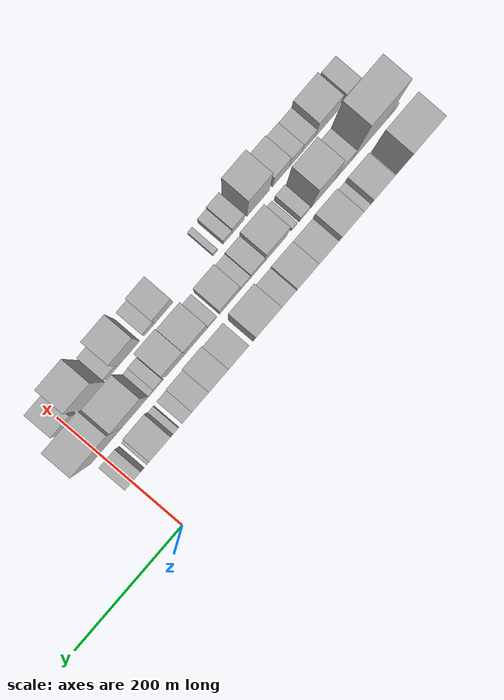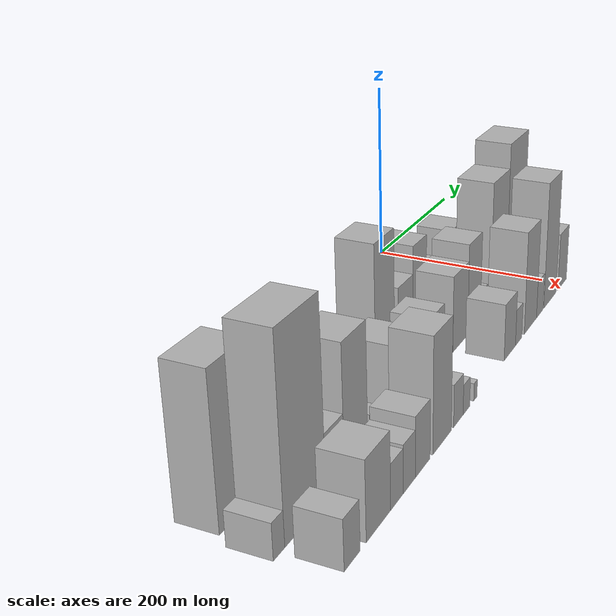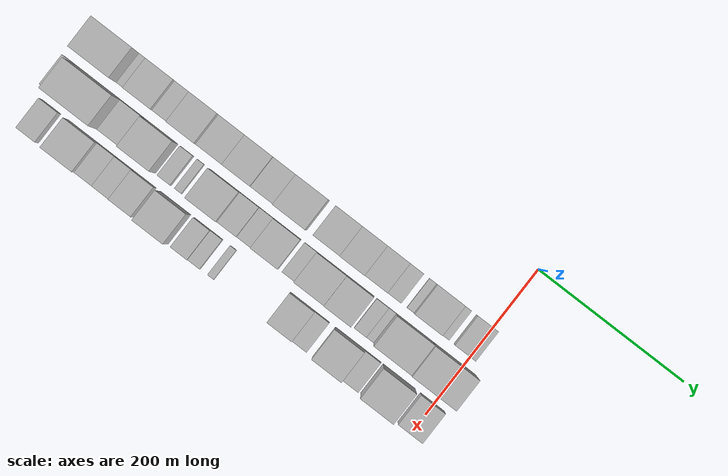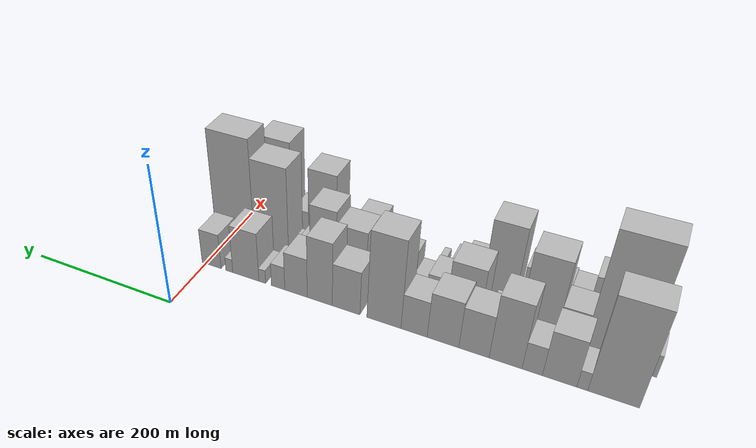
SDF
<sdf version="1.6">
 <world name="default">
  <model name="building_1">
   <static>1</static>
   <pose>100.0000 -510.8709 0 0.000000 0.000000 0.000000</pose>
   <link name="link">
    <pose>0 0 70.50 0 0 0</pose>
    <collision name="collision"><geometry><box><size>40.0000 54.2581 141.0000</size></box></geometry></collision>
    <visual name="visual">
     <cast_shadows>0</cast_shadows>
     <geometry><box><size>40.0000 54.2581 141.0000</size></box></geometry>
     <material>
      <script>
       <uri>model://HANNAS_wall/materials/scripts</uri>
       <uri>model://HANNAS_wall/materials/textures</uri>
       <name>vrc/HANNAS_wall</name>
      </script>
     </material>
    </visual>
   </link>
  </model>
  <model name="building_2">
   <static>1</static>
   <pose>100.0000 -477.8455 0 0.000000 0.000000 0.000000</pose>
   <link name="link">
    <pose>0 0 13.50 0 0 0</pose>
    <collision name="collision"><geometry><box><size>40.0000 11.7927 27.0000</size></box></geometry></collision>
    <visual name="visual">
     <cast_shadows>0</cast_shadows>
     <geometry><box><size>40.0000 11.7927 27.0000</size></box></geometry>
     <material>
      <script>
       <uri>model://HANNAS_wall/materials/scripts</uri>
       <uri>model://HANNAS_wall/materials/textures</uri>
       <name>vrc/HANNAS_wall</name>
      </script>
     </material>
    </visual>
   </link>
  </model>
  <model name="building_3">
   <static>1</static>
   <pose>100.0000 -453.1120 0 0.000000 0.000000 0.000000</pose>
   <link name="link">
    <pose>0 0 34.50 0 0 0</pose>
    <collision name="collision"><geometry><box><size>40.0000 37.6744 69.0000</size></box></geometry></collision>
    <visual name="visual">
     <cast_shadows>0</cast_shadows>
     <geometry><box><size>40.0000 37.6744 69.0000</size></box></geometry>
     <material>
      <script>
       <uri>model://HANNAS_wall/materials/scripts</uri>
       <uri>model://HANNAS_wall/materials/textures</uri>
       <name>vrc/HANNAS_wall</name>
      </script>
     </material>
    </visual>
   </link>
  </model>
  <model name="building_4">
   <static>1</static>
   <pose>100.0000 -422.9121 0 0.000000 0.000000 0.000000</pose>
   <link name="link">
    <pose>0 0 21.00 0 0 0</pose>
    <collision name="collision"><geometry><box><size>40.0000 22.7253 42.0000</size></box></geometry></collision>
    <visual name="visual">
     <cast_shadows>0</cast_shadows>
     <geometry><box><size>40.0000 22.7253 42.0000</size></box></geometry>
     <material>
      <script>
       <uri>model://HANNAS_wall/materials/scripts</uri>
       <uri>model://HANNAS_wall/materials/textures</uri>
       <name>vrc/HANNAS_wall</name>
      </script>
     </material>
    </visual>
   </link>
  </model>
  <model name="building_5">
   <static>1</static>
   <pose>100.0000 -392.6772 0 0.000000 0.000000 0.000000</pose>
   <link name="link">
    <pose>0 0 48.00 0 0 0</pose>
    <collision name="collision"><geometry><box><size>40.0000 37.7445 96.0000</size></box></geometry></collision>
    <visual name="visual">
     <cast_shadows>0</cast_shadows>
     <geometry><box><size>40.0000 37.7445 96.0000</size></box></geometry>
     <material>
      <script>
       <uri>model://HANNAS_wall/materials/scripts</uri>
       <uri>model://HANNAS_wall/materials/textures</uri>
       <name>vrc/HANNAS_wall</name>
      </script>
     </material>
    </visual>
   </link>
  </model>
  <model name="building_6">
   <static>1</static>
   <pose>100.0000 -356.0114 0 0.000000 0.000000 0.000000</pose>
   <link name="link">
    <pose>0 0 31.50 0 0 0</pose>
    <collision name="collision"><geometry><box><size>40.0000 35.5872 63.0000</size></box></geometry></collision>
    <visual name="visual">
     <cast_shadows>0</cast_shadows>
     <geometry><box><size>40.0000 35.5872 63.0000</size></box></geometry>
     <material>
      <script>
       <uri>model://HANNAS_wall/materials/scripts</uri>
       <uri>model://HANNAS_wall/materials/textures</uri>
       <name>vrc/HANNAS_wall</name>
      </script>
     </material>
    </visual>
   </link>
  </model>
  <model name="building_7">
   <static>1</static>
   <pose>100.0000 -319.1402 0 0.000000 0.000000 0.000000</pose>
   <link name="link">
    <pose>0 0 34.50 0 0 0</pose>
    <collision name="collision"><geometry><box><size>40.0000 38.1551 69.0000</size></box></geometry></collision>
    <visual name="visual">
     <cast_shadows>0</cast_shadows>
     <geometry><box><size>40.0000 38.1551 69.0000</size></box></geometry>
     <material>
      <script>
       <uri>model://HANNAS_wall/materials/scripts</uri>
       <uri>model://HANNAS_wall/materials/textures</uri>
       <name>vrc/HANNAS_wall</name>
      </script>
     </material>
    </visual>
   </link>
  </model>
  <model name="building_8">
   <static>1</static>
   <pose>100.0000 -283.8798 0 0.000000 0.000000 0.000000</pose>
   <link name="link">
    <pose>0 0 27.00 0 0 0</pose>
    <collision name="collision"><geometry><box><size>40.0000 32.3658 54.0000</size></box></geometry></collision>
    <visual name="visual">
     <cast_shadows>0</cast_shadows>
     <geometry><box><size>40.0000 32.3658 54.0000</size></box></geometry>
     <material>
      <script>
       <uri>model://HANNAS_wall/materials/scripts</uri>
       <uri>model://HANNAS_wall/materials/textures</uri>
       <name>vrc/HANNAS_wall</name>
      </script>
     </material>
    </visual>
   </link>
  </model>
  <model name="building_9">
   <static>1</static>
   <pose>100.0000 -245.9838 0 0.000000 0.000000 0.000000</pose>
   <link name="link">
    <pose>0 0 66.00 0 0 0</pose>
    <collision name="collision"><geometry><box><size>40.0000 43.4262 132.0000</size></box></geometry></collision>
    <visual name="visual">
     <cast_shadows>0</cast_shadows>
     <geometry><box><size>40.0000 43.4262 132.0000</size></box></geometry>
     <material>
      <script>
       <uri>model://HANNAS_wall/materials/scripts</uri>
       <uri>model://HANNAS_wall/materials/textures</uri>
       <name>vrc/HANNAS_wall</name>
      </script>
     </material>
    </visual>
   </link>
  </model>
  <model name="building_10">
   <static>1</static>
   <pose>100.0000 -197.0725 0 0.000000 0.000000 0.000000</pose>
   <link name="link">
    <pose>0 0 33.00 0 0 0</pose>
    <collision name="collision"><geometry><box><size>40.0000 36.3964 66.0000</size></box></geometry></collision>
    <visual name="visual">
     <cast_shadows>0</cast_shadows>
     <geometry><box><size>40.0000 36.3964 66.0000</size></box></geometry>
     <material>
      <script>
       <uri>model://HANNAS_wall/materials/scripts</uri>
       <uri>model://HANNAS_wall/materials/textures</uri>
       <name>vrc/HANNAS_wall</name>
      </script>
     </material>
    </visual>
   </link>
  </model>
  <model name="building_11">
   <static>1</static>
   <pose>100.0000 -162.0324 0 0.000000 0.000000 0.000000</pose>
   <link name="link">
    <pose>0 0 48.00 0 0 0</pose>
    <collision name="collision"><geometry><box><size>40.0000 33.6838 96.0000</size></box></geometry></collision>
    <visual name="visual">
     <cast_shadows>0</cast_shadows>
     <geometry><box><size>40.0000 33.6838 96.0000</size></box></geometry>
     <material>
      <script>
       <uri>model://HANNAS_wall/materials/scripts</uri>
       <uri>model://HANNAS_wall/materials/textures</uri>
       <name>vrc/HANNAS_wall</name>
      </script>
     </material>
    </visual>
   </link>
  </model>
  <model name="building_12">
   <static>1</static>
   <pose>100.0000 -129.7146 0 0.000000 0.000000 0.000000</pose>
   <link name="link">
    <pose>0 0 30.00 0 0 0</pose>
    <collision name="collision"><geometry><box><size>40.0000 30.9517 60.0000</size></box></geometry></collision>
    <visual name="visual">
     <cast_shadows>0</cast_shadows>
     <geometry><box><size>40.0000 30.9517 60.0000</size></box></geometry>
     <material>
      <script>
       <uri>model://HANNAS_wall/materials/scripts</uri>
       <uri>model://HANNAS_wall/materials/textures</uri>
       <name>vrc/HANNAS_wall</name>
      </script>
     </material>
    </visual>
   </link>
  </model>
  <model name="building_13">
   <static>1</static>
   <pose>100.0000 -104.8433 0 0.000000 0.000000 0.000000</pose>
   <link name="link">
    <pose>0 0 18.00 0 0 0</pose>
    <collision name="collision"><geometry><box><size>40.0000 18.7910 36.0000</size></box></geometry></collision>
    <visual name="visual">
     <cast_shadows>0</cast_shadows>
     <geometry><box><size>40.0000 18.7910 36.0000</size></box></geometry>
     <material>
      <script>
       <uri>model://HANNAS_wall/materials/scripts</uri>
       <uri>model://HANNAS_wall/materials/textures</uri>
       <name>vrc/HANNAS_wall</name>
      </script>
     </material>
    </visual>
   </link>
  </model>
  <model name="building_14">
   <static>1</static>
   <pose>100.0000 -82.6187 0 0.000000 0.000000 0.000000</pose>
   <link name="link">
    <pose>0 0 10.50 0 0 0</pose>
    <collision name="collision"><geometry><box><size>40.0000 9.6580 21.0000</size></box></geometry></collision>
    <visual name="visual">
     <cast_shadows>0</cast_shadows>
     <geometry><box><size>40.0000 9.6580 21.0000</size></box></geometry>
     <material>
      <script>
       <uri>model://HANNAS_wall/materials/scripts</uri>
       <uri>model://HANNAS_wall/materials/textures</uri>
       <name>vrc/HANNAS_wall</name>
      </script>
     </material>
    </visual>
   </link>
  </model>
  <model name="building_15">
   <static>1</static>
   <pose>100.0000 -58.9657 0 0.000000 0.000000 0.000000</pose>
   <link name="link">
    <pose>0 0 37.50 0 0 0</pose>
    <collision name="collision"><geometry><box><size>40.0000 37.6481 75.0000</size></box></geometry></collision>
    <visual name="visual">
     <cast_shadows>0</cast_shadows>
     <geometry><box><size>40.0000 37.6481 75.0000</size></box></geometry>
     <material>
      <script>
       <uri>model://HANNAS_wall/materials/scripts</uri>
       <uri>model://HANNAS_wall/materials/textures</uri>
       <name>vrc/HANNAS_wall</name>
      </script>
     </material>
    </visual>
   </link>
  </model>
  <model name="building_16">
   <static>1</static>
   <pose>100.0000 -35.0125 0 0.000000 0.000000 0.000000</pose>
   <link name="link">
    <pose>0 0 10.50 0 0 0</pose>
    <collision name="collision"><geometry><box><size>40.0000 10.2582 21.0000</size></box></geometry></collision>
    <visual name="visual">
     <cast_shadows>0</cast_shadows>
     <geometry><box><size>40.0000 10.2582 21.0000</size></box></geometry>
     <material>
      <script>
       <uri>model://HANNAS_wall/materials/scripts</uri>
       <uri>model://HANNAS_wall/materials/textures</uri>
       <name>vrc/HANNAS_wall</name>
      </script>
     </material>
    </visual>
   </link>
  </model>
  <model name="building_17">
   <static>1</static>
   <pose>100.0000 -8.8030 0 0.000000 0.000000 0.000000</pose>
   <link name="link">
    <pose>0 0 27.00 0 0 0</pose>
    <collision name="collision"><geometry><box><size>40.0000 28.1608 54.0000</size></box></geometry></collision>
    <visual name="visual">
     <cast_shadows>0</cast_shadows>
     <geometry><box><size>40.0000 28.1608 54.0000</size></box></geometry>
     <material>
      <script>
       <uri>model://HANNAS_wall/materials/scripts</uri>
       <uri>model://HANNAS_wall/materials/textures</uri>
       <name>vrc/HANNAS_wall</name>
      </script>
     </material>
    </visual>
   </link>
  </model>
  <model name="building_32">
   <static>1</static>
   <pose>152.0000 -539.6510 0 0.000000 0.000000 0.000000</pose>
   <link name="link">
    <pose>0 0 16.50 0 0 0</pose>
    <collision name="collision"><geometry><box><size>40.0000 16.6979 33.0000</size></box></geometry></collision>
    <visual name="visual">
     <cast_shadows>0</cast_shadows>
     <geometry><box><size>40.0000 16.6979 33.0000</size></box></geometry>
     <material>
      <script>
       <uri>model://HANNAS_wall/materials/scripts</uri>
       <uri>model://HANNAS_wall/materials/textures</uri>
       <name>vrc/HANNAS_wall</name>
      </script>
     </material>
    </visual>
   </link>
  </model>
  <model name="building_33">
   <static>1</static>
   <pose>152.0000 -499.0679 0 0.000000 0.000000 0.000000</pose>
   <link name="link">
    <pose>0 0 90.00 0 0 0</pose>
    <collision name="collision"><geometry><box><size>40.0000 64.4685 180.0000</size></box></geometry></collision>
    <visual name="visual">
     <cast_shadows>0</cast_shadows>
     <geometry><box><size>40.0000 64.4685 180.0000</size></box></geometry>
     <material>
      <script>
       <uri>model://HANNAS_wall/materials/scripts</uri>
       <uri>model://HANNAS_wall/materials/textures</uri>
       <name>vrc/HANNAS_wall</name>
      </script>
     </material>
    </visual>
   </link>
  </model>
  <model name="building_34">
   <static>1</static>
   <pose>152.0000 -450.8416 0 0.000000 0.000000 0.000000</pose>
   <link name="link">
    <pose>0 0 30.00 0 0 0</pose>
    <collision name="collision"><geometry><box><size>40.0000 31.9840 60.0000</size></box></geometry></collision>
    <visual name="visual">
     <cast_shadows>0</cast_shadows>
     <geometry><box><size>40.0000 31.9840 60.0000</size></box></geometry>
     <material>
      <script>
       <uri>model://HANNAS_wall/materials/scripts</uri>
       <uri>model://HANNAS_wall/materials/textures</uri>
       <name>vrc/HANNAS_wall</name>
      </script>
     </material>
    </visual>
   </link>
  </model>
  <model name="building_35">
   <static>1</static>
   <pose>152.0000 -413.2766 0 0.000000 0.000000 0.000000</pose>
   <link name="link">
    <pose>0 0 61.50 0 0 0</pose>
    <collision name="collision"><geometry><box><size>40.0000 43.1460 123.0000</size></box></geometry></collision>
    <visual name="visual">
     <cast_shadows>0</cast_shadows>
     <geometry><box><size>40.0000 43.1460 123.0000</size></box></geometry>
     <material>
      <script>
       <uri>model://HANNAS_wall/materials/scripts</uri>
       <uri>model://HANNAS_wall/materials/textures</uri>
       <name>vrc/HANNAS_wall</name>
      </script>
     </material>
    </visual>
   </link>
  </model>
  <model name="building_36">
   <static>1</static>
   <pose>152.0000 -378.8482 0 0.000000 0.000000 0.000000</pose>
   <link name="link">
    <pose>0 0 16.50 0 0 0</pose>
    <collision name="collision"><geometry><box><size>40.0000 17.7106 33.0000</size></box></geometry></collision>
    <visual name="visual">
     <cast_shadows>0</cast_shadows>
     <geometry><box><size>40.0000 17.7106 33.0000</size></box></geometry>
     <material>
      <script>
       <uri>model://HANNAS_wall/materials/scripts</uri>
       <uri>model://HANNAS_wall/materials/textures</uri>
       <name>vrc/HANNAS_wall</name>
      </script>
     </material>
    </visual>
   </link>
  </model>
  <model name="building_37">
   <static>1</static>
   <pose>152.0000 -360.1530 0 0.000000 0.000000 0.000000</pose>
   <link name="link">
    <pose>0 0 10.50 0 0 0</pose>
    <collision name="collision"><geometry><box><size>40.0000 9.6798 21.0000</size></box></geometry></collision>
    <visual name="visual">
     <cast_shadows>0</cast_shadows>
     <geometry><box><size>40.0000 9.6798 21.0000</size></box></geometry>
     <material>
      <script>
       <uri>model://HANNAS_wall/materials/scripts</uri>
       <uri>model://HANNAS_wall/materials/textures</uri>
       <name>vrc/HANNAS_wall</name>
      </script>
     </material>
    </visual>
   </link>
  </model>
  <model name="building_38">
   <static>1</static>
   <pose>152.0000 -326.4027 0 0.000000 0.000000 0.000000</pose>
   <link name="link">
    <pose>0 0 39.00 0 0 0</pose>
    <collision name="collision"><geometry><box><size>40.0000 41.8208 78.0000</size></box></geometry></collision>
    <visual name="visual">
     <cast_shadows>0</cast_shadows>
     <geometry><box><size>40.0000 41.8208 78.0000</size></box></geometry>
     <material>
      <script>
       <uri>model://HANNAS_wall/materials/scripts</uri>
       <uri>model://HANNAS_wall/materials/textures</uri>
       <name>vrc/HANNAS_wall</name>
      </script>
     </material>
    </visual>
   </link>
  </model>
  <model name="building_39">
   <static>1</static>
   <pose>152.0000 -292.3527 0 0.000000 0.000000 0.000000</pose>
   <link name="link">
    <pose>0 0 24.00 0 0 0</pose>
    <collision name="collision"><geometry><box><size>40.0000 26.2792 48.0000</size></box></geometry></collision>
    <visual name="visual">
     <cast_shadows>0</cast_shadows>
     <geometry><box><size>40.0000 26.2792 48.0000</size></box></geometry>
     <material>
      <script>
       <uri>model://HANNAS_wall/materials/scripts</uri>
       <uri>model://HANNAS_wall/materials/textures</uri>
       <name>vrc/HANNAS_wall</name>
      </script>
     </material>
    </visual>
   </link>
  </model>
  <model name="building_40">
   <static>1</static>
   <pose>152.0000 -269.5214 0 0.000000 0.000000 0.000000</pose>
   <link name="link">
    <pose>0 0 18.00 0 0 0</pose>
    <collision name="collision"><geometry><box><size>40.0000 19.3834 36.0000</size></box></geometry></collision>
    <visual name="visual">
     <cast_shadows>0</cast_shadows>
     <geometry><box><size>40.0000 19.3834 36.0000</size></box></geometry>
     <material>
      <script>
       <uri>model://HANNAS_wall/materials/scripts</uri>
       <uri>model://HANNAS_wall/materials/textures</uri>
       <name>vrc/HANNAS_wall</name>
      </script>
     </material>
    </visual>
   </link>
  </model>
  <model name="building_41">
   <static>1</static>
   <pose>152.0000 -241.3064 0 0.000000 0.000000 0.000000</pose>
   <link name="link">
    <pose>0 0 31.50 0 0 0</pose>
    <collision name="collision"><geometry><box><size>40.0000 37.0465 63.0000</size></box></geometry></collision>
    <visual name="visual">
     <cast_shadows>0</cast_shadows>
     <geometry><box><size>40.0000 37.0465 63.0000</size></box></geometry>
     <material>
      <script>
       <uri>model://HANNAS_wall/materials/scripts</uri>
       <uri>model://HANNAS_wall/materials/textures</uri>
       <name>vrc/HANNAS_wall</name>
      </script>
     </material>
    </visual>
   </link>
  </model>
  <model name="building_42">
   <static>1</static>
   <pose>152.0000 -209.1967 0 0.000000 0.000000 0.000000</pose>
   <link name="link">
    <pose>0 0 15.00 0 0 0</pose>
    <collision name="collision"><geometry><box><size>40.0000 17.1728 30.0000</size></box></geometry></collision>
    <visual name="visual">
     <cast_shadows>0</cast_shadows>
     <geometry><box><size>40.0000 17.1728 30.0000</size></box></geometry>
     <material>
      <script>
       <uri>model://HANNAS_wall/materials/scripts</uri>
       <uri>model://HANNAS_wall/materials/textures</uri>
       <name>vrc/HANNAS_wall</name>
      </script>
     </material>
    </visual>
   </link>
  </model>
  <model name="building_43">
   <static>1</static>
   <pose>152.0000 -180.1875 0 0.000000 0.000000 0.000000</pose>
   <link name="link">
    <pose>0 0 40.50 0 0 0</pose>
    <collision name="collision"><geometry><box><size>40.0000 40.8456 81.0000</size></box></geometry></collision>
    <visual name="visual">
     <cast_shadows>0</cast_shadows>
     <geometry><box><size>40.0000 40.8456 81.0000</size></box></geometry>
     <material>
      <script>
       <uri>model://HANNAS_wall/materials/scripts</uri>
       <uri>model://HANNAS_wall/materials/textures</uri>
       <name>vrc/HANNAS_wall</name>
      </script>
     </material>
    </visual>
   </link>
  </model>
  <model name="building_44">
   <static>1</static>
   <pose>152.0000 -141.4946 0 0.000000 0.000000 0.000000</pose>
   <link name="link">
    <pose>0 0 49.50 0 0 0</pose>
    <collision name="collision"><geometry><box><size>40.0000 36.5403 99.0000</size></box></geometry></collision>
    <visual name="visual">
     <cast_shadows>0</cast_shadows>
     <geometry><box><size>40.0000 36.5403 99.0000</size></box></geometry>
     <material>
      <script>
       <uri>model://HANNAS_wall/materials/scripts</uri>
       <uri>model://HANNAS_wall/materials/textures</uri>
       <name>vrc/HANNAS_wall</name>
      </script>
     </material>
    </visual>
   </link>
  </model>
  <model name="building_45">
   <static>1</static>
   <pose>152.0000 -110.9053 0 0.000000 0.000000 0.000000</pose>
   <link name="link">
    <pose>0 0 16.50 0 0 0</pose>
    <collision name="collision"><geometry><box><size>40.0000 16.6382 33.0000</size></box></geometry></collision>
    <visual name="visual">
     <cast_shadows>0</cast_shadows>
     <geometry><box><size>40.0000 16.6382 33.0000</size></box></geometry>
     <material>
      <script>
       <uri>model://HANNAS_wall/materials/scripts</uri>
       <uri>model://HANNAS_wall/materials/textures</uri>
       <name>vrc/HANNAS_wall</name>
      </script>
     </material>
    </visual>
   </link>
  </model>
  <model name="building_46">
   <static>1</static>
   <pose>152.0000 -97.6301 0 0.000000 0.000000 0.000000</pose>
   <link name="link">
    <pose>0 0 12.00 0 0 0</pose>
    <collision name="collision"><geometry><box><size>40.0000 9.9120 24.0000</size></box></geometry></collision>
    <visual name="visual">
     <cast_shadows>0</cast_shadows>
     <geometry><box><size>40.0000 9.9120 24.0000</size></box></geometry>
     <material>
      <script>
       <uri>model://HANNAS_wall/materials/scripts</uri>
       <uri>model://HANNAS_wall/materials/textures</uri>
       <name>vrc/HANNAS_wall</name>
      </script>
     </material>
    </visual>
   </link>
  </model>
  <model name="building_47">
   <static>1</static>
   <pose>152.0000 -67.5855 0 0.000000 0.000000 0.000000</pose>
   <link name="link">
    <pose>0 0 70.50 0 0 0</pose>
    <collision name="collision"><geometry><box><size>40.0000 50.1773 141.0000</size></box></geometry></collision>
    <visual name="visual">
     <cast_shadows>0</cast_shadows>
     <geometry><box><size>40.0000 50.1773 141.0000</size></box></geometry>
     <material>
      <script>
       <uri>model://HANNAS_wall/materials/scripts</uri>
       <uri>model://HANNAS_wall/materials/textures</uri>
       <name>vrc/HANNAS_wall</name>
      </script>
     </material>
    </visual>
   </link>
  </model>
  <model name="building_48">
   <static>1</static>
   <pose>152.0000 -13.3155 0 0.000000 0.000000 0.000000</pose>
   <link name="link">
    <pose>0 0 84.00 0 0 0</pose>
    <collision name="collision"><geometry><box><size>40.0000 58.3626 168.0000</size></box></geometry></collision>
    <visual name="visual">
     <cast_shadows>0</cast_shadows>
     <geometry><box><size>40.0000 58.3626 168.0000</size></box></geometry>
     <material>
      <script>
       <uri>model://HANNAS_wall/materials/scripts</uri>
       <uri>model://HANNAS_wall/materials/textures</uri>
       <name>vrc/HANNAS_wall</name>
      </script>
     </material>
    </visual>
   </link>
  </model>
  <model name="building_65">
   <static>1</static>
   <pose>204.0000 -525.1050 0 0.000000 0.000000 0.000000</pose>
   <link name="link">
    <pose>0 0 22.50 0 0 0</pose>
    <collision name="collision"><geometry><box><size>40.0000 25.7899 45.0000</size></box></geometry></collision>
    <visual name="visual">
     <cast_shadows>0</cast_shadows>
     <geometry><box><size>40.0000 25.7899 45.0000</size></box></geometry>
     <material>
      <script>
       <uri>model://HANNAS_wall/materials/scripts</uri>
       <uri>model://HANNAS_wall/materials/textures</uri>
       <name>vrc/HANNAS_wall</name>
      </script>
     </material>
    </visual>
   </link>
  </model>
  <model name="building_66">
   <static>1</static>
   <pose>204.0000 -480.7575 0 0.000000 0.000000 0.000000</pose>
   <link name="link">
    <pose>0 0 36.00 0 0 0</pose>
    <collision name="collision"><geometry><box><size>40.0000 42.9052 72.0000</size></box></geometry></collision>
    <visual name="visual">
     <cast_shadows>0</cast_shadows>
     <geometry><box><size>40.0000 42.9052 72.0000</size></box></geometry>
     <material>
      <script>
       <uri>model://HANNAS_wall/materials/scripts</uri>
       <uri>model://HANNAS_wall/materials/textures</uri>
       <name>vrc/HANNAS_wall</name>
      </script>
     </material>
    </visual>
   </link>
  </model>
  <model name="building_67">
   <static>1</static>
   <pose>204.0000 -447.3721 0 0.000000 0.000000 0.000000</pose>
   <link name="link">
    <pose>0 0 21.00 0 0 0</pose>
    <collision name="collision"><geometry><box><size>40.0000 23.8655 42.0000</size></box></geometry></collision>
    <visual name="visual">
     <cast_shadows>0</cast_shadows>
     <geometry><box><size>40.0000 23.8655 42.0000</size></box></geometry>
     <material>
      <script>
       <uri>model://HANNAS_wall/materials/scripts</uri>
       <uri>model://HANNAS_wall/materials/textures</uri>
       <name>vrc/HANNAS_wall</name>
      </script>
     </material>
    </visual>
   </link>
  </model>
  <model name="building_68">
   <static>1</static>
   <pose>204.0000 -423.6258 0 0.000000 0.000000 0.000000</pose>
   <link name="link">
    <pose>0 0 22.50 0 0 0</pose>
    <collision name="collision"><geometry><box><size>40.0000 23.6272 45.0000</size></box></geometry></collision>
    <visual name="visual">
     <cast_shadows>0</cast_shadows>
     <geometry><box><size>40.0000 23.6272 45.0000</size></box></geometry>
     <material>
      <script>
       <uri>model://HANNAS_wall/materials/scripts</uri>
       <uri>model://HANNAS_wall/materials/textures</uri>
       <name>vrc/HANNAS_wall</name>
      </script>
     </material>
    </visual>
   </link>
  </model>
  <model name="building_69">
   <static>1</static>
   <pose>204.0000 -396.5264 0 0.000000 0.000000 0.000000</pose>
   <link name="link">
    <pose>0 0 28.50 0 0 0</pose>
    <collision name="collision"><geometry><box><size>40.0000 30.5715 57.0000</size></box></geometry></collision>
    <visual name="visual">
     <cast_shadows>0</cast_shadows>
     <geometry><box><size>40.0000 30.5715 57.0000</size></box></geometry>
     <material>
      <script>
       <uri>model://HANNAS_wall/materials/scripts</uri>
       <uri>model://HANNAS_wall/materials/textures</uri>
       <name>vrc/HANNAS_wall</name>
      </script>
     </material>
    </visual>
   </link>
  </model>
  <model name="building_70">
   <static>1</static>
   <pose>204.0000 -354.5407 0 0.000000 0.000000 0.000000</pose>
   <link name="link">
    <pose>0 0 55.50 0 0 0</pose>
    <collision name="collision"><geometry><box><size>40.0000 41.4001 111.0000</size></box></geometry></collision>
    <visual name="visual">
     <cast_shadows>0</cast_shadows>
     <geometry><box><size>40.0000 41.4001 111.0000</size></box></geometry>
     <material>
      <script>
       <uri>model://HANNAS_wall/materials/scripts</uri>
       <uri>model://HANNAS_wall/materials/textures</uri>
       <name>vrc/HANNAS_wall</name>
      </script>
     </material>
    </visual>
   </link>
  </model>
  <model name="building_71">
   <static>1</static>
   <pose>204.0000 -317.4267 0 0.000000 0.000000 0.000000</pose>
   <link name="link">
    <pose>0 0 21.00 0 0 0</pose>
    <collision name="collision"><geometry><box><size>40.0000 22.8278 42.0000</size></box></geometry></collision>
    <visual name="visual">
     <cast_shadows>0</cast_shadows>
     <geometry><box><size>40.0000 22.8278 42.0000</size></box></geometry>
     <material>
      <script>
       <uri>model://HANNAS_wall/materials/scripts</uri>
       <uri>model://HANNAS_wall/materials/textures</uri>
       <name>vrc/HANNAS_wall</name>
      </script>
     </material>
    </visual>
   </link>
  </model>
  <model name="building_72">
   <static>1</static>
   <pose>204.0000 -297.8018 0 0.000000 0.000000 0.000000</pose>
   <link name="link">
    <pose>0 0 15.00 0 0 0</pose>
    <collision name="collision"><geometry><box><size>40.0000 16.4220 30.0000</size></box></geometry></collision>
    <visual name="visual">
     <cast_shadows>0</cast_shadows>
     <geometry><box><size>40.0000 16.4220 30.0000</size></box></geometry>
     <material>
      <script>
       <uri>model://HANNAS_wall/materials/scripts</uri>
       <uri>model://HANNAS_wall/materials/textures</uri>
       <name>vrc/HANNAS_wall</name>
      </script>
     </material>
    </visual>
   </link>
  </model>
  <model name="building_73">
   <static>1</static>
   <pose>204.0000 -275.2662 0 0.000000 0.000000 0.000000</pose>
   <link name="link">
    <pose>0 0 9.00 0 0 0</pose>
    <collision name="collision"><geometry><box><size>40.0000 8.6491 18.0000</size></box></geometry></collision>
    <visual name="visual">
     <cast_shadows>0</cast_shadows>
     <geometry><box><size>40.0000 8.6491 18.0000</size></box></geometry>
     <material>
      <script>
       <uri>model://HANNAS_wall/materials/scripts</uri>
       <uri>model://HANNAS_wall/materials/textures</uri>
       <name>vrc/HANNAS_wall</name>
      </script>
     </material>
    </visual>
   </link>
  </model>
  <model name="building_74">
   <static>1</static>
   <pose>204.0000 -180.0861 0 0.000000 0.000000 0.000000</pose>
   <link name="link">
    <pose>0 0 30.00 0 0 0</pose>
    <collision name="collision"><geometry><box><size>40.0000 33.9037 60.0000</size></box></geometry></collision>
    <visual name="visual">
     <cast_shadows>0</cast_shadows>
     <geometry><box><size>40.0000 33.9037 60.0000</size></box></geometry>
     <material>
      <script>
       <uri>model://HANNAS_wall/materials/scripts</uri>
       <uri>model://HANNAS_wall/materials/textures</uri>
       <name>vrc/HANNAS_wall</name>
      </script>
     </material>
    </visual>
   </link>
  </model>
  <model name="building_75">
   <static>1</static>
   <pose>204.0000 -153.3388 0 0.000000 0.000000 0.000000</pose>
   <link name="link">
    <pose>0 0 19.50 0 0 0</pose>
    <collision name="collision"><geometry><box><size>40.0000 19.5907 39.0000</size></box></geometry></collision>
    <visual name="visual">
     <cast_shadows>0</cast_shadows>
     <geometry><box><size>40.0000 19.5907 39.0000</size></box></geometry>
     <material>
      <script>
       <uri>model://HANNAS_wall/materials/scripts</uri>
       <uri>model://HANNAS_wall/materials/textures</uri>
       <name>vrc/HANNAS_wall</name>
      </script>
     </material>
    </visual>
   </link>
  </model>
  <model name="building_76">
   <static>1</static>
   <pose>204.0000 -115.4818 0 0.000000 0.000000 0.000000</pose>
   <link name="link">
    <pose>0 0 55.50 0 0 0</pose>
    <collision name="collision"><geometry><box><size>40.0000 40.1234 111.0000</size></box></geometry></collision>
    <visual name="visual">
     <cast_shadows>0</cast_shadows>
     <geometry><box><size>40.0000 40.1234 111.0000</size></box></geometry>
     <material>
      <script>
       <uri>model://HANNAS_wall/materials/scripts</uri>
       <uri>model://HANNAS_wall/materials/textures</uri>
       <name>vrc/HANNAS_wall</name>
      </script>
     </material>
    </visual>
   </link>
  </model>
  <model name="building_77">
   <static>1</static>
   <pose>204.0000 -84.3665 0 0.000000 0.000000 0.000000</pose>
   <link name="link">
    <pose>0 0 21.00 0 0 0</pose>
    <collision name="collision"><geometry><box><size>40.0000 22.1071 42.0000</size></box></geometry></collision>
    <visual name="visual">
     <cast_shadows>0</cast_shadows>
     <geometry><box><size>40.0000 22.1071 42.0000</size></box></geometry>
     <material>
      <script>
       <uri>model://HANNAS_wall/materials/scripts</uri>
       <uri>model://HANNAS_wall/materials/textures</uri>
       <name>vrc/HANNAS_wall</name>
      </script>
     </material>
    </visual>
   </link>
  </model>
  <model name="building_78">
   <static>1</static>
   <pose>204.0000 -48.2903 0 0.000000 0.000000 0.000000</pose>
   <link name="link">
    <pose>0 0 70.50 0 0 0</pose>
    <collision name="collision"><geometry><box><size>40.0000 44.0454 141.0000</size></box></geometry></collision>
    <visual name="visual">
     <cast_shadows>0</cast_shadows>
     <geometry><box><size>40.0000 44.0454 141.0000</size></box></geometry>
     <material>
      <script>
       <uri>model://HANNAS_wall/materials/scripts</uri>
       <uri>model://HANNAS_wall/materials/textures</uri>
       <name>vrc/HANNAS_wall</name>
      </script>
     </material>
    </visual>
   </link>
  </model>
  <model name="building_79">
   <static>1</static>
   <pose>204.0000 -2.7525 0 0.000000 0.000000 0.000000</pose>
   <link name="link">
    <pose>0 0 33.00 0 0 0</pose>
    <collision name="collision"><geometry><box><size>40.0000 33.0301 66.0000</size></box></geometry></collision>
    <visual name="visual">
     <cast_shadows>0</cast_shadows>
     <geometry><box><size>40.0000 33.0301 66.0000</size></box></geometry>
     <material>
      <script>
       <uri>model://HANNAS_wall/materials/scripts</uri>
       <uri>model://HANNAS_wall/materials/textures</uri>
       <name>vrc/HANNAS_wall</name>
      </script>
     </material>
    </visual>
   </link>
  </model>
 </world>
</sdf>
